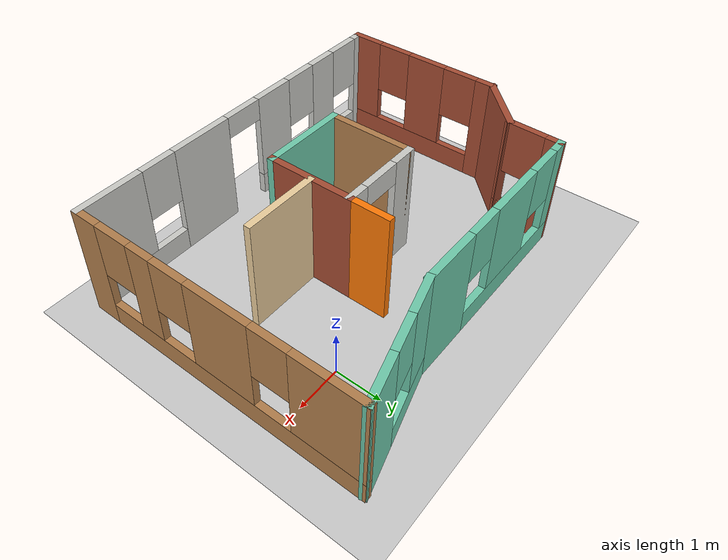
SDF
<sdf version="1.6">
 <world name="default">
  <light name="sun" type="directional">
   <pose>0 0 10 0 -0 0</pose>
   <diffuse>0.8 0.8 0.8 1</diffuse>
   <specular>0.2 0.2 0.2 1</specular>
   <attenuation>
    <range>1000</range>
    <constant>0.9</constant>
    <linear>0.01</linear>
    <quadratic>0.001</quadratic>
   </attenuation>
   <direction>-0.5 0.1 -0.9</direction>
  </light>
  <model name="ground_plane">
   <static>1</static>
   <link name="link">
    <collision name="collision">
     <geometry><plane><normal>0 0 1</normal><size>100 100</size></plane></geometry>
     <surface><friction><ode><mu>100</mu><mu2>50</mu2></ode></friction></surface>
    </collision>
    <visual name="visual">
     <cast_shadows>0</cast_shadows>
     <geometry><plane><normal>0 0 1</normal><size>100 100</size></plane></geometry>
     <material>
      <script><uri>file://media/materials/scripts/gazebo.material</uri><name>Gazebo/Grey</name></script>
     </material>
    </visual>
   </link>
  </model>
  <gravity>0 0 -9.8</gravity>
  <magnetic_field>6e-06 2.3e-05 -4.2e-05</magnetic_field>
  <atmosphere type="adiabatic"/>
  <physics name="default_physics" default="0" type="ode">
   <max_step_size>0.001</max_step_size>
   <real_time_factor>1</real_time_factor>
   <real_time_update_rate>1000</real_time_update_rate>
  </physics>
  <scene><ambient>0.4 0.4 0.4 1</ambient><background>0.7 0.7 0.7 1</background><shadows>1</shadows></scene>
  <spherical_coordinates>
   <surface_model>EARTH_WGS84</surface_model>
   <latitude_deg>0</latitude_deg>
   <longitude_deg>0</longitude_deg>
   <elevation>0</elevation>
   <heading_deg>0</heading_deg>
  </spherical_coordinates>
  <model name="mapmyworldbuilding">
   <pose>-2.45013 -1.31999 0 0 -0 0</pose>
   <link name="Wall_0">
    <collision name="Wall_0_Collision">
     <geometry><box><size>2 0.15 2.5</size></box></geometry>
     <pose>0 0 1.25 0 -0 0</pose>
    </collision>
    <visual name="Wall_0_Visual">
     <pose>0 0 1.25 0 -0 0</pose>
     <geometry><box><size>2 0.15 2.5</size></box></geometry>
     <material>
      <script><uri>file://media/materials/scripts/gazebo.material</uri><name>Gazebo/Wood</name></script>
      <ambient>1 1 1 1</ambient>
     </material>
     <meta><layer>0</layer></meta>
    </visual>
    <pose>-1.04403 -0.606858 0 0 -0 1.5708</pose>
   </link>
   <link name="Wall_1">
    <pose>-0.119026 0.318142 0 0 -0 0</pose>
    <visual name="Wall_1_Visual_0">
     <pose>-0.704711 0 1.25 0 -0 0</pose>
     <geometry><box><size>0.590578 0.15 2.5</size></box></geometry>
     <material>
      <script><uri>file://media/materials/scripts/gazebo.material</uri><name>Gazebo/CeilingTiled</name></script>
      <ambient>1 1 1 1</ambient>
     </material>
     <meta><layer>0</layer></meta>
    </visual>
    <collision name="Wall_1_Collision_0">
     <geometry><box><size>0.590578 0.15 2.5</size></box></geometry>
     <pose>-0.704711 0 1.25 0 -0 0</pose>
    </collision>
    <visual name="Wall_1_Visual_1">
     <pose>0.745289 0 1.25 0 -0 0</pose>
     <geometry><box><size>0.509422 0.15 2.5</size></box></geometry>
     <material>
      <script><uri>file://media/materials/scripts/gazebo.material</uri><name>Gazebo/CeilingTiled</name></script>
      <ambient>1 1 1 1</ambient>
     </material>
     <meta><layer>0</layer></meta>
    </visual>
    <collision name="Wall_1_Collision_1">
     <geometry><box><size>0.509422 0.15 2.5</size></box></geometry>
     <pose>0.745289 0 1.25 0 -0 0</pose>
    </collision>
    <visual name="Wall_1_Visual_2">
     <pose>0.040578 0 2.25 0 -0 0</pose>
     <geometry><box><size>0.9 0.15 0.5</size></box></geometry>
     <material>
      <script><uri>file://media/materials/scripts/gazebo.material</uri><name>Gazebo/CeilingTiled</name></script>
      <ambient>1 1 1 1</ambient>
     </material>
     <meta><layer>0</layer></meta>
    </visual>
    <collision name="Wall_1_Collision_2">
     <geometry><box><size>0.9 0.15 0.5</size></box></geometry>
     <pose>0.040578 0 2.25 0 -0 0</pose>
    </collision>
   </link>
   <link name="Wall_10">
    <pose>-0.754302 2.49364 0 0 -0 3.14159</pose>
    <visual name="Wall_10_Visual_0">
     <pose>-1.6852 0 1.25 0 -0 0</pose>
     <geometry><box><size>1.3796 0.15 2.5</size></box></geometry>
     <material>
      <script><uri>file://media/materials/scripts/gazebo.material</uri><name>Gazebo/Grey</name></script>
      <ambient>0.435294 0.796078 0.67451 1</ambient>
     </material>
     <meta><layer>0</layer></meta>
    </visual>
    <collision name="Wall_10_Collision_0">
     <geometry><box><size>1.3796 0.15 2.5</size></box></geometry>
     <pose>-1.6852 0 1.25 0 -0 0</pose>
    </collision>
    <visual name="Wall_10_Visual_1">
     <pose>0.6898 0 0.25 0 -0 0</pose>
     <geometry><box><size>3.3704 0.15 0.5</size></box></geometry>
     <material>
      <script><uri>file://media/materials/scripts/gazebo.material</uri><name>Gazebo/Grey</name></script>
      <ambient>0.435294 0.796078 0.67451 1</ambient>
     </material>
     <meta><layer>0</layer></meta>
    </visual>
    <collision name="Wall_10_Collision_1">
     <geometry><box><size>3.3704 0.15 0.5</size></box></geometry>
     <pose>0.6898 0 0.25 0 -0 0</pose>
    </collision>
    <visual name="Wall_10_Visual_2">
     <pose>0.50079 0 1.5 0 -0 0</pose>
     <geometry><box><size>1.39238 0.15 2</size></box></geometry>
     <material>
      <script><uri>file://media/materials/scripts/gazebo.material</uri><name>Gazebo/Grey</name></script>
      <ambient>0.435294 0.796078 0.67451 1</ambient>
     </material>
     <meta><layer>0</layer></meta>
    </visual>
    <collision name="Wall_10_Collision_2">
     <geometry><box><size>1.39238 0.15 2</size></box></geometry>
     <pose>0.50079 0 1.5 0 -0 0</pose>
    </collision>
    <visual name="Wall_10_Visual_3">
     <pose>2.18599 0 1.5 0 -0 0</pose>
     <geometry><box><size>0.37802 0.15 2</size></box></geometry>
     <material>
      <script><uri>file://media/materials/scripts/gazebo.material</uri><name>Gazebo/Grey</name></script>
      <ambient>0.435294 0.796078 0.67451 1</ambient>
     </material>
     <meta><layer>0</layer></meta>
    </visual>
    <collision name="Wall_10_Collision_3">
     <geometry><box><size>0.37802 0.15 2</size></box></geometry>
     <pose>2.18599 0 1.5 0 -0 0</pose>
    </collision>
    <visual name="Wall_10_Visual_4">
     <pose>-0.5954 0 1.9 0 -0 0</pose>
     <geometry><box><size>0.8 0.15 1.2</size></box></geometry>
     <material>
      <script><uri>file://media/materials/scripts/gazebo.material</uri><name>Gazebo/Grey</name></script>
      <ambient>0.435294 0.796078 0.67451 1</ambient>
     </material>
     <meta><layer>0</layer></meta>
    </visual>
    <collision name="Wall_10_Collision_4">
     <geometry><box><size>0.8 0.15 1.2</size></box></geometry>
     <pose>-0.5954 0 1.9 0 -0 0</pose>
    </collision>
    <visual name="Wall_10_Visual_5">
     <pose>1.59698 0 1.9 0 -0 0</pose>
     <geometry><box><size>0.8 0.15 1.2</size></box></geometry>
     <material>
      <script><uri>file://media/materials/scripts/gazebo.material</uri><name>Gazebo/Grey</name></script>
      <ambient>0.435294 0.796078 0.67451 1</ambient>
     </material>
     <meta><layer>0</layer></meta>
    </visual>
    <collision name="Wall_10_Collision_5">
     <geometry><box><size>0.8 0.15 1.2</size></box></geometry>
     <pose>1.59698 0 1.9 0 -0 0</pose>
    </collision>
   </link>
   <link name="Wall_11">
    <pose>-3.0713 1.9324 0 0 0 -1.60108</pose>
    <visual name="Wall_11_Visual_0">
     <pose>-0.448496 0 1.25 0 -0 0</pose>
     <geometry><box><size>0.376 0.15 2.5</size></box></geometry>
     <material>
      <script><uri>file://media/materials/scripts/gazebo.material</uri><name>Gazebo/Bricks</name></script>
      <ambient>1 1 1 1</ambient>
     </material>
     <meta><layer>0</layer></meta>
    </visual>
    <collision name="Wall_11_Collision_0">
     <geometry><box><size>0.376 0.15 2.5</size></box></geometry>
     <pose>-0.448496 0 1.25 0 -0 0</pose>
    </collision>
    <visual name="Wall_11_Visual_1">
     <pose>0.188 0 0.25 0 -0 0</pose>
     <geometry><box><size>0.896991 0.15 0.5</size></box></geometry>
     <material>
      <script><uri>file://media/materials/scripts/gazebo.material</uri><name>Gazebo/Bricks</name></script>
      <ambient>1 1 1 1</ambient>
     </material>
     <meta><layer>0</layer></meta>
    </visual>
    <collision name="Wall_11_Collision_1">
     <geometry><box><size>0.896991 0.15 0.5</size></box></geometry>
     <pose>0.188 0 0.25 0 -0 0</pose>
    </collision>
    <visual name="Wall_11_Visual_2">
     <pose>0.588 0 1.5 0 -0 0</pose>
     <geometry><box><size>0.096991 0.15 2</size></box></geometry>
     <material>
      <script><uri>file://media/materials/scripts/gazebo.material</uri><name>Gazebo/Bricks</name></script>
      <ambient>1 1 1 1</ambient>
     </material>
     <meta><layer>0</layer></meta>
    </visual>
    <collision name="Wall_11_Collision_2">
     <geometry><box><size>0.096991 0.15 2</size></box></geometry>
     <pose>0.588 0 1.5 0 -0 0</pose>
    </collision>
    <visual name="Wall_11_Visual_3">
     <pose>0.139504 0 1.9 0 -0 0</pose>
     <geometry><box><size>0.8 0.15 1.2</size></box></geometry>
     <material>
      <script><uri>file://media/materials/scripts/gazebo.material</uri><name>Gazebo/Bricks</name></script>
      <ambient>1 1 1 1</ambient>
     </material>
     <meta><layer>0</layer></meta>
    </visual>
    <collision name="Wall_11_Collision_3">
     <geometry><box><size>0.8 0.15 1.2</size></box></geometry>
     <pose>0.139504 0 1.9 0 -0 0</pose>
    </collision>
   </link>
   <link name="Wall_14">
    <collision name="Wall_14_Collision">
     <geometry><box><size>1 0.15 2.5</size></box></geometry>
     <pose>0 0 1.25 0 -0 0</pose>
    </collision>
    <visual name="Wall_14_Visual">
     <pose>0 0 1.25 0 -0 0</pose>
     <geometry><box><size>1 0.15 2.5</size></box></geometry>
     <material>
      <script><uri>file://media/materials/scripts/gazebo.material</uri><name>Gazebo/Grey</name></script>
      <ambient>0.996078 0.47451 0.0196078 1</ambient>
     </material>
     <meta><layer>0</layer></meta>
    </visual>
    <pose>0.805974 0.743142 0 0 -0 1.5708</pose>
   </link>
   <link name="Wall_16">
    <collision name="Wall_16_Collision">
     <geometry><box><size>1.75 0.15 2.5</size></box></geometry>
     <pose>0 0 1.25 0 -0 0</pose>
    </collision>
    <visual name="Wall_16_Visual">
     <pose>0 0 1.25 0 -0 0</pose>
     <geometry><box><size>1.75 0.15 2.5</size></box></geometry>
     <material>
      <script><uri>file://media/materials/scripts/gazebo.material</uri><name>Gazebo/Grey</name></script>
      <ambient>0.921569 0.807843 0.615686 1</ambient>
     </material>
     <meta><layer>0</layer></meta>
    </visual>
    <pose>1.64678 -0.579833 0 0 -0 0</pose>
   </link>
   <link name="Wall_2">
    <collision name="Wall_2_Collision">
     <geometry><box><size>2 0.15 2.5</size></box></geometry>
     <pose>0 0 1.25 0 -0 0</pose>
    </collision>
    <visual name="Wall_2_Visual">
     <pose>0 0 1.25 0 -0 0</pose>
     <geometry><box><size>2 0.15 2.5</size></box></geometry>
     <material>
      <script><uri>file://media/materials/scripts/gazebo.material</uri><name>Gazebo/Bricks</name></script>
      <ambient>1 1 1 1</ambient>
     </material>
     <meta><layer>0</layer></meta>
    </visual>
    <pose>0.805974 -0.606858 0 0 0 -1.5708</pose>
   </link>
   <link name="Wall_3">
    <collision name="Wall_3_Collision">
     <geometry><box><size>2 0.15 2.5</size></box></geometry>
     <pose>0 0 1.25 0 -0 0</pose>
    </collision>
    <visual name="Wall_3_Visual">
     <pose>0 0 1.25 0 -0 0</pose>
     <geometry><box><size>2 0.15 2.5</size></box></geometry>
     <material>
      <script><uri>file://media/materials/scripts/gazebo.material</uri><name>Gazebo/Grey</name></script>
      <ambient>0.435294 0.796078 0.67451 1</ambient>
     </material>
     <meta><layer>0</layer></meta>
    </visual>
    <pose>-0.119026 -1.53186 0 0 -0 3.14159</pose>
   </link>
   <link name="Wall_5">
    <collision name="Wall_5_Collision">
     <geometry><box><size>1.5 0.15 2.5</size></box></geometry>
     <pose>0 0 1.25 0 -0 0</pose>
    </collision>
    <visual name="Wall_5_Visual">
     <pose>0 0 1.25 0 -0 0</pose>
     <geometry><box><size>1.5 0.15 2.5</size></box></geometry>
     <material>
      <script><uri>file://media/materials/scripts/gazebo.material</uri><name>Gazebo/Bricks</name></script>
      <ambient>1 1 1 1</ambient>
     </material>
     <meta><layer>0</layer></meta>
    </visual>
    <pose>-3.5656 0.893869 0 0 0 -2.35619</pose>
   </link>
   <link name="Wall_6">
    <pose>-4.04289 -1.38343 0 0 0 -1.5708</pose>
    <visual name="Wall_6_Visual_0">
     <pose>-1.64992 0 1.25 0 -0 0</pose>
     <geometry><box><size>0.450156 0.15 2.5</size></box></geometry>
     <material>
      <script><uri>file://media/materials/scripts/gazebo.material</uri><name>Gazebo/Bricks</name></script>
      <ambient>1 1 1 1</ambient>
     </material>
     <meta><layer>0</layer></meta>
    </visual>
    <collision name="Wall_6_Collision_0">
     <geometry><box><size>0.450156 0.15 2.5</size></box></geometry>
     <pose>-1.64992 0 1.25 0 -0 0</pose>
    </collision>
    <visual name="Wall_6_Visual_1">
     <pose>0.225078 0 0.25 0 -0 0</pose>
     <geometry><box><size>3.29984 0.15 0.5</size></box></geometry>
     <material>
      <script><uri>file://media/materials/scripts/gazebo.material</uri><name>Gazebo/Bricks</name></script>
      <ambient>1 1 1 1</ambient>
     </material>
     <meta><layer>0</layer></meta>
    </visual>
    <collision name="Wall_6_Collision_1">
     <geometry><box><size>3.29984 0.15 0.5</size></box></geometry>
     <pose>0.225078 0 0.25 0 -0 0</pose>
    </collision>
    <visual name="Wall_6_Visual_2">
     <pose>-0.159961 0 1.5 0 -0 0</pose>
     <geometry><box><size>0.929767 0.15 2</size></box></geometry>
     <material>
      <script><uri>file://media/materials/scripts/gazebo.material</uri><name>Gazebo/Bricks</name></script>
      <ambient>1 1 1 1</ambient>
     </material>
     <meta><layer>0</layer></meta>
    </visual>
    <collision name="Wall_6_Collision_2">
     <geometry><box><size>0.929767 0.15 2</size></box></geometry>
     <pose>-0.159961 0 1.5 0 -0 0</pose>
    </collision>
    <visual name="Wall_6_Visual_3">
     <pose>1.48996 0 1.5 0 -0 0</pose>
     <geometry><box><size>0.770077 0.15 2</size></box></geometry>
     <material>
      <script><uri>file://media/materials/scripts/gazebo.material</uri><name>Gazebo/Bricks</name></script>
      <ambient>1 1 1 1</ambient>
     </material>
     <meta><layer>0</layer></meta>
    </visual>
    <collision name="Wall_6_Collision_3">
     <geometry><box><size>0.770077 0.15 2</size></box></geometry>
     <pose>1.48996 0 1.5 0 -0 0</pose>
    </collision>
    <visual name="Wall_6_Visual_4">
     <pose>-1.02484 0 1.9 0 -0 0</pose>
     <geometry><box><size>0.8 0.15 1.2</size></box></geometry>
     <material>
      <script><uri>file://media/materials/scripts/gazebo.material</uri><name>Gazebo/Bricks</name></script>
      <ambient>1 1 1 1</ambient>
     </material>
     <meta><layer>0</layer></meta>
    </visual>
    <collision name="Wall_6_Collision_4">
     <geometry><box><size>0.8 0.15 1.2</size></box></geometry>
     <pose>-1.02484 0 1.9 0 -0 0</pose>
    </collision>
    <visual name="Wall_6_Visual_5">
     <pose>0.704923 0 1.9 0 -0 0</pose>
     <geometry><box><size>0.8 0.15 1.2</size></box></geometry>
     <material>
      <script><uri>file://media/materials/scripts/gazebo.material</uri><name>Gazebo/Bricks</name></script>
      <ambient>1 1 1 1</ambient>
     </material>
     <meta><layer>0</layer></meta>
    </visual>
    <collision name="Wall_6_Collision_5">
     <geometry><box><size>0.8 0.15 1.2</size></box></geometry>
     <pose>0.704923 0 1.9 0 -0 0</pose>
    </collision>
   </link>
   <link name="Wall_7">
    <pose>0.007105 -3.18343 0 0 -0 0</pose>
    <visual name="Wall_7_Visual_0">
     <pose>-3.96465 0 1.25 0 -0 0</pose>
     <geometry><box><size>0.320707 0.15 2.5</size></box></geometry>
     <material>
      <script><uri>file://media/materials/scripts/gazebo.material</uri><name>Gazebo/CeilingTiled</name></script>
      <ambient>1 1 1 1</ambient>
     </material>
     <meta><layer>0</layer></meta>
    </visual>
    <collision name="Wall_7_Collision_0">
     <geometry><box><size>0.320707 0.15 2.5</size></box></geometry>
     <pose>-3.96465 0 1.25 0 -0 0</pose>
    </collision>
    <visual name="Wall_7_Visual_1">
     <pose>1.10603 0 1.25 0 -0 0</pose>
     <geometry><box><size>1.44295 0.15 2.5</size></box></geometry>
     <material>
      <script><uri>file://media/materials/scripts/gazebo.material</uri><name>Gazebo/CeilingTiled</name></script>
      <ambient>1 1 1 1</ambient>
     </material>
     <meta><layer>0</layer></meta>
    </visual>
    <collision name="Wall_7_Collision_1">
     <geometry><box><size>1.44295 0.15 2.5</size></box></geometry>
     <pose>1.10603 0 1.25 0 -0 0</pose>
    </collision>
    <visual name="Wall_7_Visual_2">
     <pose>-2.15987 0 0.25 0 -0 0</pose>
     <geometry><box><size>3.28885 0.15 0.5</size></box></geometry>
     <material>
      <script><uri>file://media/materials/scripts/gazebo.material</uri><name>Gazebo/CeilingTiled</name></script>
      <ambient>1 1 1 1</ambient>
     </material>
     <meta><layer>0</layer></meta>
    </visual>
    <collision name="Wall_7_Collision_2">
     <geometry><box><size>3.28885 0.15 0.5</size></box></geometry>
     <pose>-2.15987 0 0.25 0 -0 0</pose>
    </collision>
    <visual name="Wall_7_Visual_3">
     <pose>2.97625 0 0.25 0 -0 0</pose>
     <geometry><box><size>2.29749 0.15 0.5</size></box></geometry>
     <material>
      <script><uri>file://media/materials/scripts/gazebo.material</uri><name>Gazebo/CeilingTiled</name></script>
      <ambient>1 1 1 1</ambient>
     </material>
     <meta><layer>0</layer></meta>
    </visual>
    <collision name="Wall_7_Collision_3">
     <geometry><box><size>2.29749 0.15 0.5</size></box></geometry>
     <pose>2.97625 0 0.25 0 -0 0</pose>
    </collision>
    <visual name="Wall_7_Visual_4">
     <pose>-2.63998 0 1.5 0 -0 0</pose>
     <geometry><box><size>0.728631 0.15 2</size></box></geometry>
     <material>
      <script><uri>file://media/materials/scripts/gazebo.material</uri><name>Gazebo/CeilingTiled</name></script>
      <ambient>1 1 1 1</ambient>
     </material>
     <meta><layer>0</layer></meta>
    </visual>
    <collision name="Wall_7_Collision_4">
     <geometry><box><size>0.728631 0.15 2</size></box></geometry>
     <pose>-2.63998 0 1.5 0 -0 0</pose>
    </collision>
    <visual name="Wall_7_Visual_5">
     <pose>-0.995551 0 1.5 0 -0 0</pose>
     <geometry><box><size>0.960221 0.15 2</size></box></geometry>
     <material>
      <script><uri>file://media/materials/scripts/gazebo.material</uri><name>Gazebo/CeilingTiled</name></script>
      <ambient>1 1 1 1</ambient>
     </material>
     <meta><layer>0</layer></meta>
    </visual>
    <collision name="Wall_7_Collision_5">
     <geometry><box><size>0.960221 0.15 2</size></box></geometry>
     <pose>-0.995551 0 1.5 0 -0 0</pose>
    </collision>
    <visual name="Wall_7_Visual_6">
     <pose>-0.995551 0 1.5 0 -0 0</pose>
     <geometry><box><size>0.960221 0.15 2</size></box></geometry>
     <material>
      <script><uri>file://media/materials/scripts/gazebo.material</uri><name>Gazebo/CeilingTiled</name></script>
      <ambient>1 1 1 1</ambient>
     </material>
     <meta><layer>0</layer></meta>
    </visual>
    <collision name="Wall_7_Collision_6">
     <geometry><box><size>0.960221 0.15 2</size></box></geometry>
     <pose>-0.995551 0 1.5 0 -0 0</pose>
    </collision>
    <visual name="Wall_7_Visual_7">
     <pose>3.37625 0 1.5 0 -0 0</pose>
     <geometry><box><size>1.49749 0.15 2</size></box></geometry>
     <material>
      <script><uri>file://media/materials/scripts/gazebo.material</uri><name>Gazebo/CeilingTiled</name></script>
      <ambient>1 1 1 1</ambient>
     </material>
     <meta><layer>0</layer></meta>
    </visual>
    <collision name="Wall_7_Collision_7">
     <geometry><box><size>1.49749 0.15 2</size></box></geometry>
     <pose>3.37625 0 1.5 0 -0 0</pose>
    </collision>
    <visual name="Wall_7_Visual_8">
     <pose>-3.40429 0 1.9 0 -0 0</pose>
     <geometry><box><size>0.8 0.15 1.2</size></box></geometry>
     <material>
      <script><uri>file://media/materials/scripts/gazebo.material</uri><name>Gazebo/CeilingTiled</name></script>
      <ambient>1 1 1 1</ambient>
     </material>
     <meta><layer>0</layer></meta>
    </visual>
    <collision name="Wall_7_Collision_8">
     <geometry><box><size>0.8 0.15 1.2</size></box></geometry>
     <pose>-3.40429 0 1.9 0 -0 0</pose>
    </collision>
    <visual name="Wall_7_Visual_9">
     <pose>2.22751 0 1.9 0 -0 0</pose>
     <geometry><box><size>0.8 0.15 1.2</size></box></geometry>
     <material>
      <script><uri>file://media/materials/scripts/gazebo.material</uri><name>Gazebo/CeilingTiled</name></script>
      <ambient>1 1 1 1</ambient>
     </material>
     <meta><layer>0</layer></meta>
    </visual>
    <collision name="Wall_7_Collision_9">
     <geometry><box><size>0.8 0.15 1.2</size></box></geometry>
     <pose>2.22751 0 1.9 0 -0 0</pose>
    </collision>
    <visual name="Wall_7_Visual_10">
     <pose>-1.87566 0 1.9 0 -0 0</pose>
     <geometry><box><size>0.8 0.15 1.2</size></box></geometry>
     <material>
      <script><uri>file://media/materials/scripts/gazebo.material</uri><name>Gazebo/CeilingTiled</name></script>
      <ambient>1 1 1 1</ambient>
     </material>
     <meta><layer>0</layer></meta>
    </visual>
    <collision name="Wall_7_Collision_10">
     <geometry><box><size>0.8 0.15 1.2</size></box></geometry>
     <pose>-1.87566 0 1.9 0 -0 0</pose>
    </collision>
    <visual name="Wall_7_Visual_11">
     <pose>-0.06544 0 2.25 0 -0 0</pose>
     <geometry><box><size>0.9 0.15 0.5</size></box></geometry>
     <material>
      <script><uri>file://media/materials/scripts/gazebo.material</uri><name>Gazebo/CeilingTiled</name></script>
      <ambient>1 1 1 1</ambient>
     </material>
     <meta><layer>0</layer></meta>
    </visual>
    <collision name="Wall_7_Collision_11">
     <geometry><box><size>0.9 0.15 0.5</size></box></geometry>
     <pose>-0.06544 0 2.25 0 -0 0</pose>
    </collision>
    <visual name="Wall_7_Visual_12">
     <pose>-0.06544 0 2.25 0 -0 0</pose>
     <geometry><box><size>0.9 0.15 0.5</size></box></geometry>
     <material>
      <script><uri>file://media/materials/scripts/gazebo.material</uri><name>Gazebo/CeilingTiled</name></script>
      <ambient>1 1 1 1</ambient>
     </material>
     <meta><layer>0</layer></meta>
    </visual>
    <collision name="Wall_7_Collision_12">
     <geometry><box><size>0.9 0.15 0.5</size></box></geometry>
     <pose>-0.06544 0 2.25 0 -0 0</pose>
    </collision>
   </link>
   <link name="Wall_8">
    <pose>4.0571 -0.008428 0 0 -0 1.5708</pose>
    <visual name="Wall_8_Visual_0">
     <pose>-2.93536 0 1.25 0 -0 0</pose>
     <geometry><box><size>0.629282 0.15 2.5</size></box></geometry>
     <material>
      <script><uri>file://media/materials/scripts/gazebo.material</uri><name>Gazebo/Wood</name></script>
      <ambient>1 1 1 1</ambient>
     </material>
     <meta><layer>0</layer></meta>
    </visual>
    <collision name="Wall_8_Collision_0">
     <geometry><box><size>0.629282 0.15 2.5</size></box></geometry>
     <pose>-2.93536 0 1.25 0 -0 0</pose>
    </collision>
    <visual name="Wall_8_Visual_1">
     <pose>0.314641 0 0.25 0 -0 0</pose>
     <geometry><box><size>5.87072 0.15 0.5</size></box></geometry>
     <material>
      <script><uri>file://media/materials/scripts/gazebo.material</uri><name>Gazebo/Wood</name></script>
      <ambient>1 1 1 1</ambient>
     </material>
     <meta><layer>0</layer></meta>
    </visual>
    <collision name="Wall_8_Collision_1">
     <geometry><box><size>5.87072 0.15 0.5</size></box></geometry>
     <pose>0.314641 0 0.25 0 -0 0</pose>
    </collision>
    <visual name="Wall_8_Visual_2">
     <pose>-1.53686 0 1.5 0 -0 0</pose>
     <geometry><box><size>0.567723 0.15 2</size></box></geometry>
     <material>
      <script><uri>file://media/materials/scripts/gazebo.material</uri><name>Gazebo/Wood</name></script>
      <ambient>1 1 1 1</ambient>
     </material>
     <meta><layer>0</layer></meta>
    </visual>
    <collision name="Wall_8_Collision_2">
     <geometry><box><size>0.567723 0.15 2</size></box></geometry>
     <pose>-1.53686 0 1.5 0 -0 0</pose>
    </collision>
    <visual name="Wall_8_Visual_3">
     <pose>0.243195 0 1.5 0 -0 0</pose>
     <geometry><box><size>1.39238 0.15 2</size></box></geometry>
     <material>
      <script><uri>file://media/materials/scripts/gazebo.material</uri><name>Gazebo/Wood</name></script>
      <ambient>1 1 1 1</ambient>
     </material>
     <meta><layer>0</layer></meta>
    </visual>
    <collision name="Wall_8_Collision_3">
     <geometry><box><size>1.39238 0.15 2</size></box></geometry>
     <pose>0.243195 0 1.5 0 -0 0</pose>
    </collision>
    <visual name="Wall_8_Visual_4">
     <pose>2.49469 0 1.5 0 -0 0</pose>
     <geometry><box><size>1.51062 0.15 2</size></box></geometry>
     <material>
      <script><uri>file://media/materials/scripts/gazebo.material</uri><name>Gazebo/Wood</name></script>
      <ambient>1 1 1 1</ambient>
     </material>
     <meta><layer>0</layer></meta>
    </visual>
    <collision name="Wall_8_Collision_4">
     <geometry><box><size>1.51062 0.15 2</size></box></geometry>
     <pose>2.49469 0 1.5 0 -0 0</pose>
    </collision>
    <visual name="Wall_8_Visual_5">
     <pose>-2.22072 0 1.9 0 -0 0</pose>
     <geometry><box><size>0.8 0.15 1.2</size></box></geometry>
     <material>
      <script><uri>file://media/materials/scripts/gazebo.material</uri><name>Gazebo/Wood</name></script>
      <ambient>1 1 1 1</ambient>
     </material>
     <meta><layer>0</layer></meta>
    </visual>
    <collision name="Wall_8_Collision_5">
     <geometry><box><size>0.8 0.15 1.2</size></box></geometry>
     <pose>-2.22072 0 1.9 0 -0 0</pose>
    </collision>
    <visual name="Wall_8_Visual_6">
     <pose>-0.852995 0 1.9 0 -0 0</pose>
     <geometry><box><size>0.8 0.15 1.2</size></box></geometry>
     <material>
      <script><uri>file://media/materials/scripts/gazebo.material</uri><name>Gazebo/Wood</name></script>
      <ambient>1 1 1 1</ambient>
     </material>
     <meta><layer>0</layer></meta>
    </visual>
    <collision name="Wall_8_Collision_6">
     <geometry><box><size>0.8 0.15 1.2</size></box></geometry>
     <pose>-0.852995 0 1.9 0 -0 0</pose>
    </collision>
    <visual name="Wall_8_Visual_7">
     <pose>1.33938 0 1.9 0 -0 0</pose>
     <geometry><box><size>0.8 0.15 1.2</size></box></geometry>
     <material>
      <script><uri>file://media/materials/scripts/gazebo.material</uri><name>Gazebo/Wood</name></script>
      <ambient>1 1 1 1</ambient>
     </material>
     <meta><layer>0</layer></meta>
    </visual>
    <collision name="Wall_8_Collision_7">
     <geometry><box><size>0.8 0.15 1.2</size></box></geometry>
     <pose>1.33938 0 1.9 0 -0 0</pose>
    </collision>
   </link>
   <link name="Wall_9">
    <pose>2.8014 2.83011 0 0 0 -2.87979</pose>
    <visual name="Wall_9_Visual_0">
     <pose>-0.84551 0 1.25 0 -0 0</pose>
     <geometry><box><size>1.05898 0.15 2.5</size></box></geometry>
     <material>
      <script><uri>file://media/materials/scripts/gazebo.material</uri><name>Gazebo/Grey</name></script>
      <ambient>0.435294 0.796078 0.67451 1</ambient>
     </material>
     <meta><layer>0</layer></meta>
    </visual>
    <collision name="Wall_9_Collision_0">
     <geometry><box><size>1.05898 0.15 2.5</size></box></geometry>
     <pose>-0.84551 0 1.25 0 -0 0</pose>
    </collision>
    <visual name="Wall_9_Visual_1">
     <pose>0.52949 0 0.25 0 -0 0</pose>
     <geometry><box><size>1.69102 0.15 0.5</size></box></geometry>
     <material>
      <script><uri>file://media/materials/scripts/gazebo.material</uri><name>Gazebo/Grey</name></script>
      <ambient>0.435294 0.796078 0.67451 1</ambient>
     </material>
     <meta><layer>0</layer></meta>
    </visual>
    <collision name="Wall_9_Collision_1">
     <geometry><box><size>1.69102 0.15 0.5</size></box></geometry>
     <pose>0.52949 0 0.25 0 -0 0</pose>
    </collision>
    <visual name="Wall_9_Visual_2">
     <pose>0.92949 0 1.5 0 -0 0</pose>
     <geometry><box><size>0.89102 0.15 2</size></box></geometry>
     <material>
      <script><uri>file://media/materials/scripts/gazebo.material</uri><name>Gazebo/Grey</name></script>
      <ambient>0.435294 0.796078 0.67451 1</ambient>
     </material>
     <meta><layer>0</layer></meta>
    </visual>
    <collision name="Wall_9_Collision_2">
     <geometry><box><size>0.89102 0.15 2</size></box></geometry>
     <pose>0.92949 0 1.5 0 -0 0</pose>
    </collision>
    <visual name="Wall_9_Visual_3">
     <pose>0.08398 0 1.9 0 -0 0</pose>
     <geometry><box><size>0.8 0.15 1.2</size></box></geometry>
     <material>
      <script><uri>file://media/materials/scripts/gazebo.material</uri><name>Gazebo/Grey</name></script>
      <ambient>0.435294 0.796078 0.67451 1</ambient>
     </material>
     <meta><layer>0</layer></meta>
    </visual>
    <collision name="Wall_9_Collision_3">
     <geometry><box><size>0.8 0.15 1.2</size></box></geometry>
     <pose>0.08398 0 1.9 0 -0 0</pose>
    </collision>
   </link>
   <static>1</static>
  </model>
  <model name="bookshelf">
   <static>1</static>
   <link name="link">
    <inertial><mass>1</mass></inertial>
    <collision name="back">
     <pose>0 0.005 0.6 0 -0 0</pose>
     <geometry><box><size>0.9 0.01 1.2</size></box></geometry>
    </collision>
    <visual name="visual1">
     <pose>0 0.005 0.6 0 -0 0</pose>
     <geometry><box><size>0.9 0.01 1.2</size></box></geometry>
     <material>
      <script><uri>file://media/materials/scripts/gazebo.material</uri><name>Gazebo/Wood</name></script>
     </material>
    </visual>
    <collision name="left_side">
     <pose>0.45 -0.195 0.6 0 -0 0</pose>
     <geometry><box><size>0.02 0.4 1.2</size></box></geometry>
    </collision>
    <visual name="visual2">
     <pose>0.45 -0.195 0.6 0 -0 0</pose>
     <geometry><box><size>0.02 0.4 1.2</size></box></geometry>
     <material>
      <script><uri>file://media/materials/scripts/gazebo.material</uri><name>Gazebo/Wood</name></script>
     </material>
    </visual>
    <collision name="right_side">
     <pose>-0.45 -0.195 0.6 0 -0 0</pose>
     <geometry><box><size>0.02 0.4 1.2</size></box></geometry>
    </collision>
    <visual name="visual3">
     <pose>-0.45 -0.195 0.6 0 -0 0</pose>
     <geometry><box><size>0.02 0.4 1.2</size></box></geometry>
     <material>
      <script><uri>file://media/materials/scripts/gazebo.material</uri><name>Gazebo/Wood</name></script>
     </material>
    </visual>
    <collision name="bottom">
     <pose>0 -0.195 0.03 0 -0 0</pose>
     <geometry><box><size>0.88 0.4 0.06</size></box></geometry>
    </collision>
    <visual name="visual4">
     <pose>0 -0.195 0.03 0 -0 0</pose>
     <geometry><box><size>0.88 0.4 0.06</size></box></geometry>
     <material>
      <script><uri>file://media/materials/scripts/gazebo.material</uri><name>Gazebo/Wood</name></script>
     </material>
    </visual>
    <collision name="top">
     <pose>0 -0.195 1.19 0 -0 0</pose>
     <geometry><box><size>0.88 0.4 0.02</size></box></geometry>
    </collision>
    <visual name="visual5">
     <pose>0 -0.195 1.19 0 -0 0</pose>
     <geometry><box><size>0.88 0.4 0.02</size></box></geometry>
     <material>
      <script><uri>file://media/materials/scripts/gazebo.material</uri><name>Gazebo/Wood</name></script>
     </material>
    </visual>
    <collision name="low_shelf">
     <pose>0 -0.195 0.43 0 -0 0</pose>
     <geometry><box><size>0.88 0.4 0.02</size></box></geometry>
    </collision>
    <visual name="visual6">
     <pose>0 -0.195 0.43 0 -0 0</pose>
     <geometry><box><size>0.88 0.4 0.02</size></box></geometry>
     <material>
      <script><uri>file://media/materials/scripts/gazebo.material</uri><name>Gazebo/Wood</name></script>
     </material>
    </visual>
    <collision name="high_shelf">
     <pose>0 -0.195 0.8 0 -0 0</pose>
     <geometry><box><size>0.88 0.4 0.02</size></box></geometry>
    </collision>
    <visual name="visual7">
     <pose>0 -0.195 0.8 0 -0 0</pose>
     <geometry><box><size>0.88 0.4 0.02</size></box></geometry>
     <material>
      <script><uri>file://media/materials/scripts/gazebo.material</uri><name>Gazebo/Wood</name></script>
     </material>
    </visual>
   </link>
   <pose>-1.08631 -1.97408 0 0 -0 0</pose>
  </model>
 </world>
</sdf>
